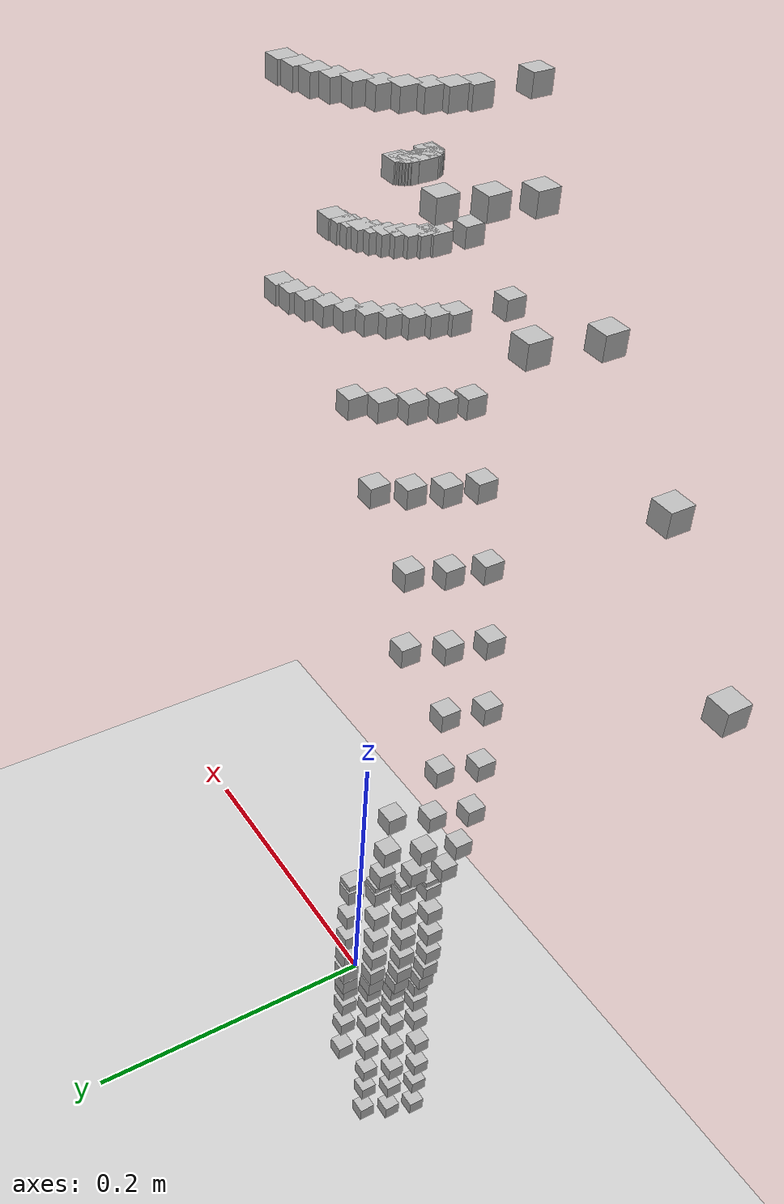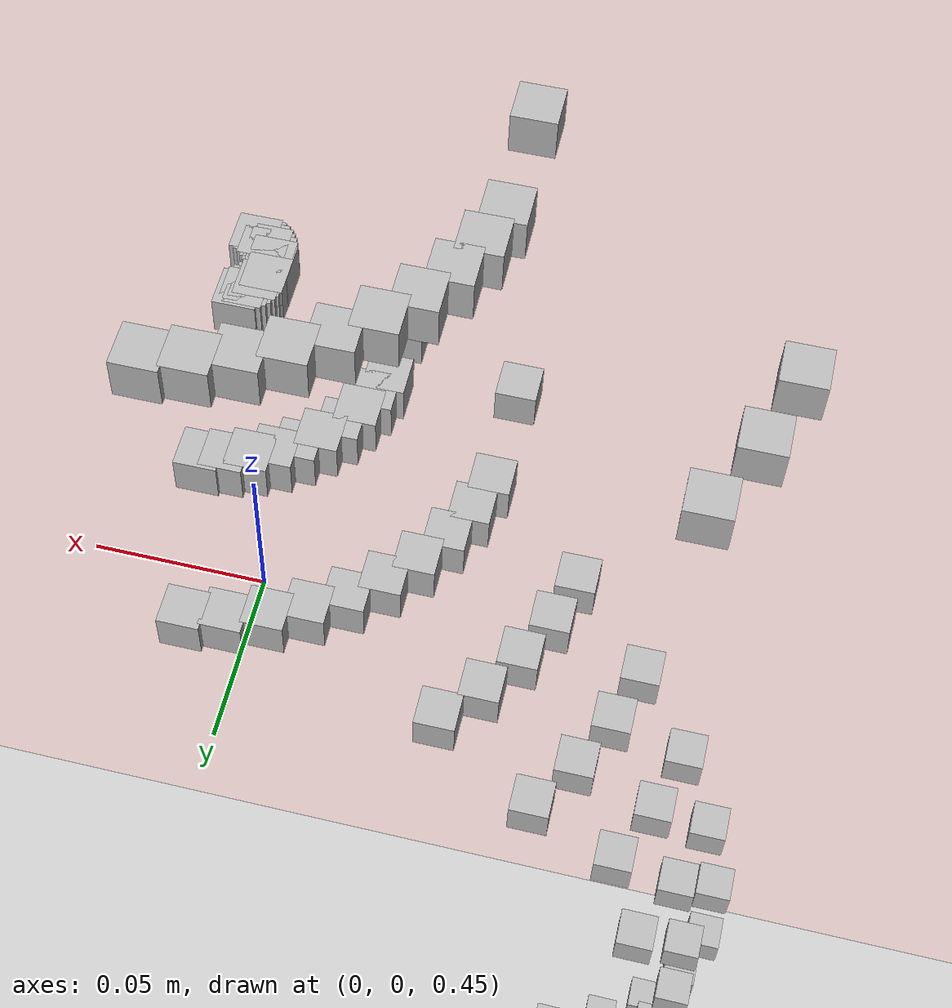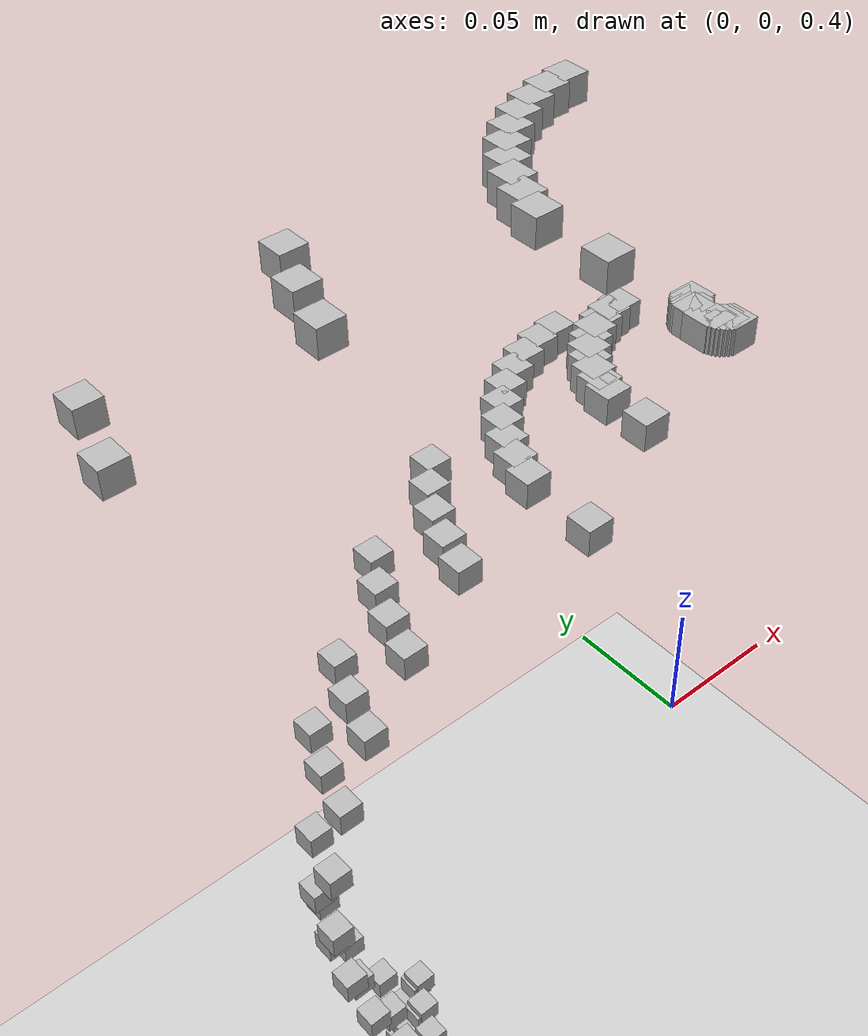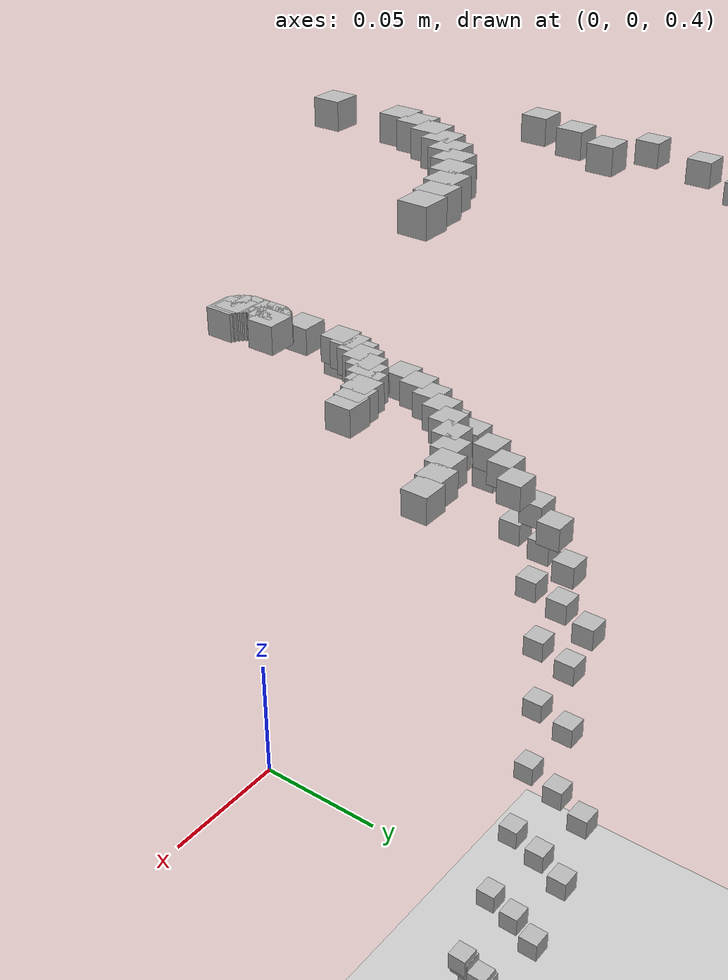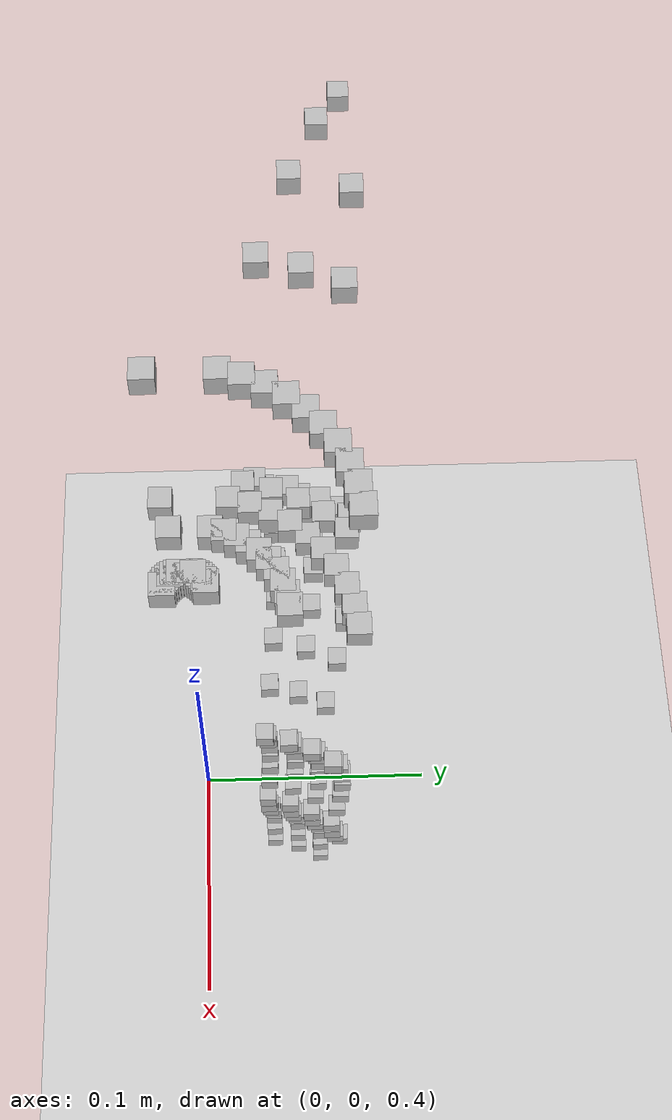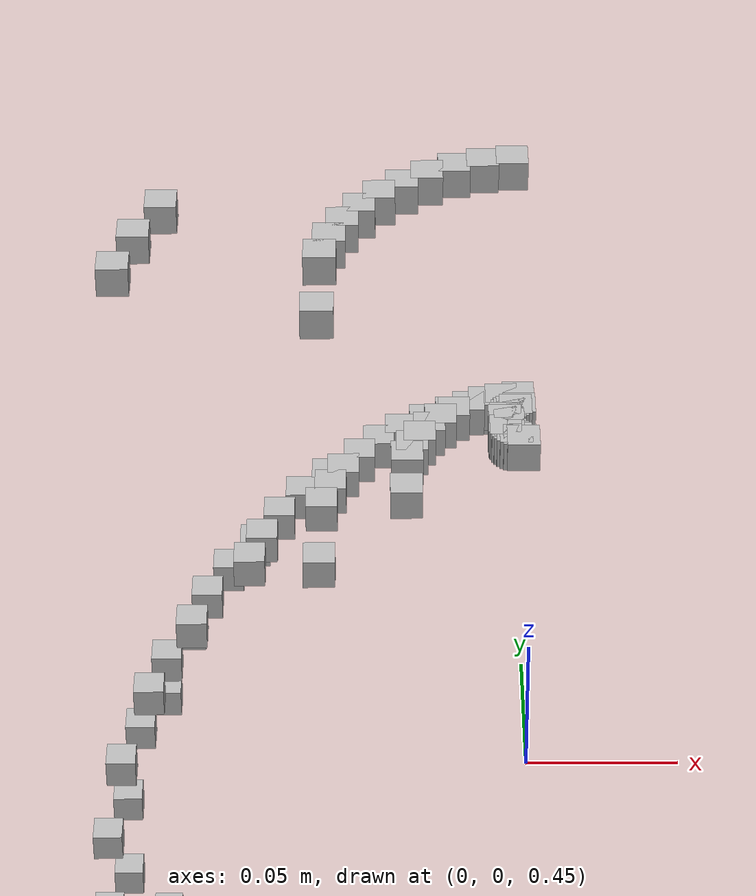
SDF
<sdf version="1.6">
 <world name="default">
  <model name="ground_plane">
   <static>1</static>
   <link name="link">
    <collision name="collision">
     <geometry><plane><normal>0 0 1</normal><size>100 100</size></plane></geometry>
     <surface>
      <contact><collide_bitmask>65535</collide_bitmask></contact>
      <friction><ode><mu>100</mu><mu2>50</mu2></ode></friction>
     </surface>
    </collision>
    <visual name="visual">
     <cast_shadows>0</cast_shadows>
     <geometry><plane><normal>0 0 1</normal><size>100 100</size></plane></geometry>
     <material>
      <script><uri>file://media/materials/scripts/gazebo.material</uri><name>Gazebo/Grey</name></script>
     </material>
    </visual>
   </link>
  </model>
  <model name="box_1685262135_6639128">
   <pose>-0.10334709397636789 0.05728622963244068 0.005648136022940203 0.0 0.0 0.0</pose>
   <static>1</static>
   <link name="box_1685262135_6639128_link">
    <visual name="visual"><geometry><box><size>0.01 0.01 0.01</size></box></geometry></visual>
   </link>
  </model>
  <model name="box_1685262135_6639287">
   <pose>-0.11031402938228857 0.0423455884397007 0.005648136022940203 0.0 0.0 0.0</pose>
   <static>1</static>
   <link name="box_1685262135_6639287_link">
    <visual name="visual"><geometry><box><size>0.01 0.01 0.01</size></box></geometry></visual>
   </link>
  </model>
  <model name="box_1685262135_663945">
   <pose>-0.11513382768663159 0.026580738535374886 0.005648136022940203 0.0 0.0 0.0</pose>
   <static>1</static>
   <link name="box_1685262135_663945_link">
    <visual name="visual"><geometry><box><size>0.01 0.01 0.01</size></box></geometry></visual>
   </link>
  </model>
  <model name="box_1685262135_665383">
   <pose>-0.102818924416911 0.056993460464931894 0.02920890265866033 0.0 0.0 0.0</pose>
   <static>1</static>
   <link name="box_1685262135_665383_link">
    <visual name="visual"><geometry><box><size>0.01 0.01 0.01</size></box></geometry></visual>
   </link>
  </model>
  <model name="box_1685262135_6653996">
   <pose>-0.10975025433976941 0.042129175477027034 0.02920890265866033 0.0 0.0 0.0</pose>
   <static>1</static>
   <link name="box_1685262135_6653996_link">
    <visual name="visual"><geometry><box><size>0.01 0.01 0.01</size></box></geometry></visual>
   </link>
  </model>
  <model name="box_1685262135_6654158">
   <pose>-0.1145454204009682 0.026444894009688677 0.02920890265866033 0.0 0.0 0.0</pose>
   <static>1</static>
   <link name="box_1685262135_6654158_link">
    <visual name="visual"><geometry><box><size>0.01 0.01 0.01</size></box></geometry></visual>
   </link>
  </model>
  <model name="box_1685262135_6668599">
   <pose>-0.10305663561211614 0.05712522593206576 0.05028140928145608 0.0 0.0 0.0</pose>
   <static>1</static>
   <link name="box_1685262135_6668599_link">
    <visual name="visual"><geometry><box><size>0.01 0.01 0.01</size></box></geometry></visual>
   </link>
  </model>
  <model name="box_1685262135_6668782">
   <pose>-0.11000399035462392 0.042226575607522895 0.05028140928145608 0.0 0.0 0.0</pose>
   <static>1</static>
   <link name="box_1685262135_6668782_link">
    <visual name="visual"><geometry><box><size>0.01 0.01 0.01</size></box></geometry></visual>
   </link>
  </model>
  <model name="box_1685262135_6668947">
   <pose>-0.11481024255256339 0.02650603302079744 0.05028140928145608 0.0 0.0 0.0</pose>
   <static>1</static>
   <link name="box_1685262135_6668947_link">
    <visual name="visual"><geometry><box><size>0.01 0.01 0.01</size></box></geometry></visual>
   </link>
  </model>
  <model name="box_1685262135_6676207">
   <pose>-0.3000103244935548 0.06926284093482016 0.5316791207351375 0.0 0.0 0.0</pose>
   <static>1</static>
   <link name="box_1685262135_6676207_link">
    <visual name="visual"><geometry><box><size>0.01 0.01 0.01</size></box></geometry></visual>
   </link>
  </model>
  <model name="box_1685262135_6682944">
   <pose>-0.0917620752987109 0.06914768348718114 0.06994559093984248 0.0 0.0 0.0</pose>
   <static>1</static>
   <link name="box_1685262135_6682944_link">
    <visual name="visual"><geometry><box><size>0.01 0.01 0.01</size></box></geometry></visual>
   </link>
  </model>
  <model name="box_1685262135_6683118">
   <pose>-0.1004925506248891 0.055703930414951655 0.06994559093984248 0.0 0.0 0.0</pose>
   <static>1</static>
   <link name="box_1685262135_6683118_link">
    <visual name="visual"><geometry><box><size>0.01 0.01 0.01</size></box></geometry></visual>
   </link>
  </model>
  <model name="box_1685262135_6683369">
   <pose>-0.10726705276173594 0.04117596369947679 0.06994559093984248 0.0 0.0 0.0</pose>
   <static>1</static>
   <link name="box_1685262135_6683369_link">
    <visual name="visual"><geometry><box><size>0.01 0.01 0.01</size></box></geometry></visual>
   </link>
  </model>
  <model name="box_1685262135_6683617">
   <pose>-0.11195372373103965 0.025846553687556128 0.06994559093984248 0.0 0.0 0.0</pose>
   <static>1</static>
   <link name="box_1685262135_6683617_link">
    <visual name="visual"><geometry><box><size>0.01 0.01 0.01</size></box></geometry></visual>
   </link>
  </model>
  <model name="box_1685262135_6691551">
   <pose>-0.24746845495353145 0.05713259455575965 0.5710245451470004 0.0 0.0 0.0</pose>
   <static>1</static>
   <link name="box_1685262135_6691551_link">
    <visual name="visual"><geometry><box><size>0.01 0.01 0.01</size></box></geometry></visual>
   </link>
  </model>
  <model name="box_1685262135_6700697">
   <pose>-0.08724861854500403 0.06574654987046152 0.08776207523471741 0.0 0.0 0.0</pose>
   <static>1</static>
   <link name="box_1685262135_6700697_link">
    <visual name="visual"><geometry><box><size>0.01 0.01 0.01</size></box></geometry></visual>
   </link>
  </model>
  <model name="box_1685262135_670093">
   <pose>-0.09554967220982881 0.052964048169253215 0.08776207523471741 0.0 0.0 0.0</pose>
   <static>1</static>
   <link name="box_1685262135_670093_link">
    <visual name="visual"><geometry><box><size>0.01 0.01 0.01</size></box></geometry></visual>
   </link>
  </model>
  <model name="box_1685262135_6701105">
   <pose>-0.10199096019123051 0.0391506615161422 0.08776207523471741 0.0 0.0 0.0</pose>
   <static>1</static>
   <link name="box_1685262135_6701105_link">
    <visual name="visual"><geometry><box><size>0.01 0.01 0.01</size></box></geometry></visual>
   </link>
  </model>
  <model name="box_1685262135_6701272">
   <pose>-0.10644711014550763 0.0245752517698369 0.08776207523471741 0.0 0.0 0.0</pose>
   <static>1</static>
   <link name="box_1685262135_6701272_link">
    <visual name="visual"><geometry><box><size>0.01 0.01 0.01</size></box></geometry></visual>
   </link>
  </model>
  <model name="box_1685262135_6708736">
   <pose>-0.1820327482213548 0.06987582524083515 0.6025204345093003 0.0 0.0 0.0</pose>
   <static>1</static>
   <link name="box_1685262135_6708736_link">
    <visual name="visual"><geometry><box><size>0.01 0.01 0.01</size></box></geometry></visual>
   </link>
  </model>
  <model name="box_1685262135_670901">
   <pose>-0.18998605330979215 0.043861736466716476 0.6025204345093003 0.0 0.0 0.0</pose>
   <static>1</static>
   <link name="box_1685262135_670901_link">
    <visual name="visual"><geometry><box><size>0.01 0.01 0.01</size></box></geometry></visual>
   </link>
  </model>
  <model name="box_1685262135_6716418">
   <pose>-0.08435087693095822 0.06356294494104589 0.10333120046485805 0.0 0.0 0.0</pose>
   <static>1</static>
   <link name="box_1685262135_6716418_link">
    <visual name="visual"><geometry><box><size>0.01 0.01 0.01</size></box></geometry></visual>
   </link>
  </model>
  <model name="box_1685262135_671658">
   <pose>-0.09237623214867711 0.05120498161911401 0.10333120046485805 0.0 0.0 0.0</pose>
   <static>1</static>
   <link name="box_1685262135_671658_link">
    <visual name="visual"><geometry><box><size>0.01 0.01 0.01</size></box></geometry></visual>
   </link>
  </model>
  <model name="box_1685262135_671676">
   <pose>-0.0986035890840287 0.03785037157476933 0.10333120046485805 0.0 0.0 0.0</pose>
   <static>1</static>
   <link name="box_1685262135_671676_link">
    <visual name="visual"><geometry><box><size>0.01 0.01 0.01</size></box></geometry></visual>
   </link>
  </model>
  <model name="box_1685262135_6716928">
   <pose>-0.10291173931777986 0.023759047101881304 0.10333120046485805 0.0 0.0 0.0</pose>
   <static>1</static>
   <link name="box_1685262135_6716928_link">
    <visual name="visual"><geometry><box><size>0.01 0.01 0.01</size></box></geometry></visual>
   </link>
  </model>
  <model name="box_1685262135_6724136">
   <pose>-0.11567034881498531 0.06411712133284544 0.6254485040649695 0.0 0.0 0.0</pose>
   <static>1</static>
   <link name="box_1685262135_6724136_link">
    <visual name="visual"><geometry><box><size>0.01 0.01 0.01</size></box></geometry></visual>
   </link>
  </model>
  <model name="box_1685262135_67243">
   <pose>-0.12346803153220416 0.047394936781831834 0.6254485040649695 0.0 0.0 0.0</pose>
   <static>1</static>
   <link name="box_1685262135_67243_link">
    <visual name="visual"><geometry><box><size>0.01 0.01 0.01</size></box></geometry></visual>
   </link>
  </model>
  <model name="box_1685262135_672449">
   <pose>-0.12886254945845294 0.02975026369730141 0.6254485040649695 0.0 0.0 0.0</pose>
   <static>1</static>
   <link name="box_1685262135_672449_link">
    <visual name="visual"><geometry><box><size>0.01 0.01 0.01</size></box></geometry></visual>
   </link>
  </model>
  <model name="box_1685262135_6731715">
   <pose>-0.08338877635484518 0.06283795015530969 0.1175214826546544 0.0 0.0 0.0</pose>
   <static>1</static>
   <link name="box_1685262135_6731715_link">
    <visual name="visual"><geometry><box><size>0.01 0.01 0.01</size></box></geometry></visual>
   </link>
  </model>
  <model name="box_1685262135_6731882">
   <pose>-0.09132259489672373 0.050620940953408425 0.1175214826546544 0.0 0.0 0.0</pose>
   <static>1</static>
   <link name="box_1685262135_6731882_link">
    <visual name="visual"><geometry><box><size>0.01 0.01 0.01</size></box></geometry></visual>
   </link>
  </model>
  <model name="box_1685262135_6732044">
   <pose>-0.09747892300684961 0.03741865271631591 0.1175214826546544 0.0 0.0 0.0</pose>
   <static>1</static>
   <link name="box_1685262135_6732044_link">
    <visual name="visual"><geometry><box><size>0.01 0.01 0.01</size></box></geometry></visual>
   </link>
  </model>
  <model name="box_1685262135_6732235">
   <pose>-0.10173793476127865 0.02348805296718693 0.1175214826546544 0.0 0.0 0.0</pose>
   <static>1</static>
   <link name="box_1685262135_6732235_link">
    <visual name="visual"><geometry><box><size>0.01 0.01 0.01</size></box></geometry></visual>
   </link>
  </model>
  <model name="box_1685262135_673241">
   <pose>-0.0656973682738992 -0.012770274754615075 0.6394057500981778 0.0 0.0 0.0</pose>
   <static>1</static>
   <link name="box_1685262135_673241_link">
    <visual name="visual"><geometry><box><size>0.01 0.01 0.01</size></box></geometry></visual>
   </link>
  </model>
  <model name="box_1685262135_6738503">
   <pose>-0.005833072906933615 0.06667232841207132 0.6394057500981778 0.0 0.0 0.0</pose>
   <static>1</static>
   <link name="box_1685262135_6738503_link">
    <visual name="visual"><geometry><box><size>0.01 0.01 0.01</size></box></geometry></visual>
   </link>
  </model>
  <model name="box_1685262135_6738744">
   <pose>-0.015055300535713753 0.0652116710505415 0.6394057500981778 0.0 0.0 0.0</pose>
   <static>1</static>
   <link name="box_1685262135_6738744_link">
    <visual name="visual"><geometry><box><size>0.01 0.01 0.01</size></box></geometry></visual>
   </link>
  </model>
  <model name="box_1685262135_673892">
   <pose>-0.02398449386471679 0.06248174268918928 0.6394057500981778 0.0 0.0 0.0</pose>
   <static>1</static>
   <link name="box_1685262135_673892_link">
    <visual name="visual"><geometry><box><size>0.01 0.01 0.01</size></box></geometry></visual>
   </link>
  </model>
  <model name="box_1685262135_6739082">
   <pose>-0.03244685630260051 0.05853567827832091 0.6394057500981778 0.0 0.0 0.0</pose>
   <static>1</static>
   <link name="box_1685262135_6739082_link">
    <visual name="visual"><geometry><box><size>0.01 0.01 0.01</size></box></geometry></visual>
   </link>
  </model>
  <model name="box_1685262135_673925">
   <pose>-0.04027767759030613 0.05345028347311216 0.6394057500981778 0.0 0.0 0.0</pose>
   <static>1</static>
   <link name="box_1685262135_673925_link">
    <visual name="visual"><geometry><box><size>0.01 0.01 0.01</size></box></geometry></visual>
   </link>
  </model>
  <model name="box_1685262135_6739411">
   <pose>-0.04732453969889562 0.04732453969889563 0.6394057500981778 0.0 0.0 0.0</pose>
   <static>1</static>
   <link name="box_1685262135_6739411_link">
    <visual name="visual"><geometry><box><size>0.01 0.01 0.01</size></box></geometry></visual>
   </link>
  </model>
  <model name="box_1685262135_6739576">
   <pose>-0.053450283473112176 0.040277677590306114 0.6394057500981778 0.0 0.0 0.0</pose>
   <static>1</static>
   <link name="box_1685262135_6739576_link">
    <visual name="visual"><geometry><box><size>0.01 0.01 0.01</size></box></geometry></visual>
   </link>
  </model>
  <model name="box_1685262135_673979">
   <pose>-0.0585356782783209 0.03244685630260052 0.6394057500981778 0.0 0.0 0.0</pose>
   <static>1</static>
   <link name="box_1685262135_673979_link">
    <visual name="visual"><geometry><box><size>0.01 0.01 0.01</size></box></geometry></visual>
   </link>
  </model>
  <model name="box_1685262135_6739974">
   <pose>-0.06248174268918928 0.023984493864716787 0.6394057500981778 0.0 0.0 0.0</pose>
   <static>1</static>
   <link name="box_1685262135_6739974_link">
    <visual name="visual"><geometry><box><size>0.01 0.01 0.01</size></box></geometry></visual>
   </link>
  </model>
  <model name="box_1685262135_6740139">
   <pose>-0.0652116710505415 0.015055300535713752 0.6394057500981778 0.0 0.0 0.0</pose>
   <static>1</static>
   <link name="box_1685262135_6740139_link">
    <visual name="visual"><geometry><box><size>0.01 0.01 0.01</size></box></geometry></visual>
   </link>
  </model>
  <model name="box_1685262135_674706">
   <pose>-0.08802804232605324 0.06633388781741759 0.13255102465284446 0.0 0.0 0.0</pose>
   <static>1</static>
   <link name="box_1685262135_674706_link">
    <visual name="visual"><geometry><box><size>0.01 0.01 0.01</size></box></geometry></visual>
   </link>
  </model>
  <model name="box_1685262135_674722">
   <pose>-0.09640325233560905 0.0534371953591134 0.13255102465284446 0.0 0.0 0.0</pose>
   <static>1</static>
   <link name="box_1685262135_674722_link">
    <visual name="visual"><geometry><box><size>0.01 0.01 0.01</size></box></geometry></visual>
   </link>
  </model>
  <model name="box_1685262135_674738">
   <pose>-0.10290208269552649 0.039500408677052824 0.13255102465284446 0.0 0.0 0.0</pose>
   <static>1</static>
   <link name="box_1685262135_674738_link">
    <visual name="visual"><geometry><box><size>0.01 0.01 0.01</size></box></geometry></visual>
   </link>
  </model>
  <model name="box_1685262135_6747544">
   <pose>-0.1073980410651597 0.02479479147114234 0.13255102465284446 0.0 0.0 0.0</pose>
   <static>1</static>
   <link name="box_1685262135_6747544_link">
    <visual name="visual"><geometry><box><size>0.01 0.01 0.01</size></box></geometry></visual>
   </link>
  </model>
  <model name="box_1685262135_6762633">
   <pose>-0.09093393041133167 0.0685236315532246 0.14825398363050718 0.0 0.0 0.0</pose>
   <static>1</static>
   <link name="box_1685262135_6762633_link">
    <visual name="visual"><geometry><box><size>0.01 0.01 0.01</size></box></geometry></visual>
   </link>
  </model>
  <model name="box_1685262135_6762795">
   <pose>-0.09958561394381701 0.05520120720353886 0.14825398363050718 0.0 0.0 0.0</pose>
   <static>1</static>
   <link name="box_1685262135_6762795_link">
    <visual name="visual"><geometry><box><size>0.01 0.01 0.01</size></box></geometry></visual>
   </link>
  </model>
  <model name="box_1685262135_6762958">
   <pose>-0.10629897677784288 0.04080435414607872 0.14825398363050718 0.0 0.0 0.0</pose>
   <static>1</static>
   <link name="box_1685262135_6762958_link">
    <visual name="visual"><geometry><box><size>0.01 0.01 0.01</size></box></geometry></visual>
   </link>
  </model>
  <model name="box_1685262135_6763132">
   <pose>-0.11094335094218198 0.025613290749430067 0.14825398363050718 0.0 0.0 0.0</pose>
   <static>1</static>
   <link name="box_1685262135_6763132_link">
    <visual name="visual"><geometry><box><size>0.01 0.01 0.01</size></box></geometry></visual>
   </link>
  </model>
  <model name="box_1685262135_6771228">
   <pose>-0.09204802756754422 0.06936316397749658 0.16428489958480497 0.0 0.0 0.0</pose>
   <static>1</static>
   <link name="box_1685262135_6771228_link">
    <visual name="visual"><geometry><box><size>0.01 0.01 0.01</size></box></geometry></visual>
   </link>
  </model>
  <model name="box_1685262135_677139">
   <pose>-0.10080570911393254 0.05587751699996771 0.16428489958480497 0.0 0.0 0.0</pose>
   <static>1</static>
   <link name="box_1685262135_677139_link">
    <visual name="visual"><geometry><box><size>0.01 0.01 0.01</size></box></geometry></visual>
   </link>
  </model>
  <model name="box_1685262135_6771553">
   <pose>-0.10760132219721277 0.04130427771376794 0.16428489958480497 0.0 0.0 0.0</pose>
   <static>1</static>
   <link name="box_1685262135_6771553_link">
    <visual name="visual"><geometry><box><size>0.01 0.01 0.01</size></box></geometry></visual>
   </link>
  </model>
  <model name="box_1685262135_6771717">
   <pose>-0.11230259793861416 0.025927097644789218 0.16428489958480497 0.0 0.0 0.0</pose>
   <static>1</static>
   <link name="box_1685262135_6771717_link">
    <visual name="visual"><geometry><box><size>0.01 0.01 0.01</size></box></geometry></visual>
   </link>
  </model>
  <model name="box_1685262135_6778748">
   <pose>-0.09137855275369092 0.0688586785200756 0.18035913689155542 0.0 0.0 0.0</pose>
   <static>1</static>
   <link name="box_1685262135_6778748_link">
    <visual name="visual"><geometry><box><size>0.01 0.01 0.01</size></box></geometry></visual>
   </link>
  </model>
  <model name="box_1685262135_6778927">
   <pose>-0.10007253877744836 0.05547111404619785 0.18035913689155542 0.0 0.0 0.0</pose>
   <static>1</static>
   <link name="box_1685262135_6778927_link">
    <visual name="visual"><geometry><box><size>0.01 0.01 0.01</size></box></geometry></visual>
   </link>
  </model>
  <model name="box_1685262135_677909">
   <pose>-0.1068187266647285 0.041003867434867836 0.18035913689155542 0.0 0.0 0.0</pose>
   <static>1</static>
   <link name="box_1685262135_677909_link">
    <visual name="visual"><geometry><box><size>0.01 0.01 0.01</size></box></geometry></visual>
   </link>
  </model>
  <model name="box_1685262135_677925">
   <pose>-0.11148580954198037 0.025738527185126026 0.18035913689155542 0.0 0.0 0.0</pose>
   <static>1</static>
   <link name="box_1685262135_677925_link">
    <visual name="visual"><geometry><box><size>0.01 0.01 0.01</size></box></geometry></visual>
   </link>
  </model>
  <model name="box_1685262135_6786144">
   <pose>-0.0889268396138326 0.06701118015384513 0.19617448160834577 0.0 0.0 0.0</pose>
   <static>1</static>
   <link name="box_1685262135_6786144_link">
    <visual name="visual"><geometry><box><size>0.01 0.01 0.01</size></box></geometry></visual>
   </link>
  </model>
  <model name="box_1685262135_6786304">
   <pose>-0.09738756346468559 0.05398280792740622 0.19617448160834577 0.0 0.0 0.0</pose>
   <static>1</static>
   <link name="box_1685262135_6786304_link">
    <visual name="visual"><geometry><box><size>0.01 0.01 0.01</size></box></geometry></visual>
   </link>
  </model>
  <model name="box_1685262135_6786463">
   <pose>-0.10395274916941005 0.0399037217491942 0.19617448160834577 0.0 0.0 0.0</pose>
   <static>1</static>
   <link name="box_1685262135_6786463_link">
    <visual name="visual"><geometry><box><size>0.01 0.01 0.01</size></box></geometry></visual>
   </link>
  </model>
  <model name="box_1685262135_6786623">
   <pose>-0.10849461285605153 0.02504795501694486 0.19617448160834577 0.0 0.0 0.0</pose>
   <static>1</static>
   <link name="box_1685262135_6786623_link">
    <visual name="visual"><geometry><box><size>0.01 0.01 0.01</size></box></geometry></visual>
   </link>
  </model>
  <model name="box_1685262135_6793587">
   <pose>-0.08472961193160576 0.06384834223469953 0.2113835132273968 0.0 0.0 0.0</pose>
   <static>1</static>
   <link name="box_1685262135_6793587_link">
    <visual name="visual"><geometry><box><size>0.01 0.01 0.01</size></box></geometry></visual>
   </link>
  </model>
  <model name="box_1685262135_6793752">
   <pose>-0.09279100095269657 0.051434891721442236 0.2113835132273968 0.0 0.0 0.0</pose>
   <static>1</static>
   <link name="box_1685262135_6793752_link">
    <visual name="visual"><geometry><box><size>0.01 0.01 0.01</size></box></geometry></visual>
   </link>
  </model>
  <model name="box_1685262135_6793914">
   <pose>-0.09904631868844237 0.03802031954714919 0.2113835132273968 0.0 0.0 0.0</pose>
   <static>1</static>
   <link name="box_1685262135_6793914_link">
    <visual name="visual"><geometry><box><size>0.01 0.01 0.01</size></box></geometry></visual>
   </link>
  </model>
  <model name="box_1685262135_6794076">
   <pose>-0.10337381249443528 0.023865725100343384 0.2113835132273968 0.0 0.0 0.0</pose>
   <static>1</static>
   <link name="box_1685262135_6794076_link">
    <visual name="visual"><geometry><box><size>0.01 0.01 0.01</size></box></geometry></visual>
   </link>
  </model>
  <model name="box_1685262135_6800988">
   <pose>-0.08342168139579186 0.06286274588218385 0.21508165296930842 0.0 0.0 0.0</pose>
   <static>1</static>
   <link name="box_1685262135_6800988_link">
    <visual name="visual"><geometry><box><size>0.01 0.01 0.01</size></box></geometry></visual>
   </link>
  </model>
  <model name="box_1685262135_680116">
   <pose>-0.09135863060627349 0.05064091587338738 0.21508165296930842 0.0 0.0 0.0</pose>
   <static>1</static>
   <link name="box_1685262135_680116_link">
    <visual name="visual"><geometry><box><size>0.01 0.01 0.01</size></box></geometry></visual>
   </link>
  </model>
  <model name="box_1685262135_6801322">
   <pose>-0.09751738799090609 0.0374334180403034 0.21508165296930842 0.0 0.0 0.0</pose>
   <static>1</static>
   <link name="box_1685262135_6801322_link">
    <visual name="visual"><geometry><box><size>0.01 0.01 0.01</size></box></geometry></visual>
   </link>
  </model>
  <model name="box_1685262135_6801484">
   <pose>-0.10177808034268045 0.023497321304946847 0.21508165296930842 0.0 0.0 0.0</pose>
   <static>1</static>
   <link name="box_1685262135_6801484_link">
    <visual name="visual"><geometry><box><size>0.01 0.01 0.01</size></box></geometry></visual>
   </link>
  </model>
  <model name="box_1685262135_6808496">
   <pose>-0.10693247591762375 0.0592736392953941 0.24636117300793503 0.0 0.0 0.0</pose>
   <static>1</static>
   <link name="box_1685262135_6808496_link">
    <visual name="visual"><geometry><box><size>0.01 0.01 0.01</size></box></geometry></visual>
   </link>
  </model>
  <model name="box_1685262135_6808658">
   <pose>-0.11414111259862814 0.04381466804554113 0.24636117300793503 0.0 0.0 0.0</pose>
   <static>1</static>
   <link name="box_1685262135_6808658_link">
    <visual name="visual"><geometry><box><size>0.01 0.01 0.01</size></box></geometry></visual>
   </link>
  </model>
  <model name="box_1685262135_680882">
   <pose>-0.11912812235649146 0.02750289412062791 0.24636117300793503 0.0 0.0 0.0</pose>
   <static>1</static>
   <link name="box_1685262135_680882_link">
    <visual name="visual"><geometry><box><size>0.01 0.01 0.01</size></box></geometry></visual>
   </link>
  </model>
  <model name="box_1685262135_6815948">
   <pose>-0.11858062357628997 0.06573031297525117 0.2798396861917631 0.0 0.0 0.0</pose>
   <static>1</static>
   <link name="box_1685262135_6815948_link">
    <visual name="visual"><geometry><box><size>0.01 0.01 0.01</size></box></geometry></visual>
   </link>
  </model>
  <model name="box_1685262135_6816113">
   <pose>-0.12657449658290512 0.0485873969908904 0.2798396861917631 0.0 0.0 0.0</pose>
   <static>1</static>
   <link name="box_1685262135_6816113_link">
    <visual name="visual"><geometry><box><size>0.01 0.01 0.01</size></box></geometry></visual>
   </link>
  </model>
  <model name="box_1685262135_681628">
   <pose>-0.13210474098988992 0.030498782591446887 0.2798396861917631 0.0 0.0 0.0</pose>
   <static>1</static>
   <link name="box_1685262135_681628_link">
    <visual name="visual"><geometry><box><size>0.01 0.01 0.01</size></box></geometry></visual>
   </link>
  </model>
  <model name="box_1685262135_6823382">
   <pose>-0.126019757579352 0.06985389228811852 0.314821790288947 0.0 0.0 0.0</pose>
   <static>1</static>
   <link name="box_1685262135_6823382_link">
    <visual name="visual"><geometry><box><size>0.01 0.01 0.01</size></box></geometry></visual>
   </link>
  </model>
  <model name="box_1685262135_6823547">
   <pose>-0.13451512476525362 0.05163551856568264 0.314821790288947 0.0 0.0 0.0</pose>
   <static>1</static>
   <link name="box_1685262135_6823547_link">
    <visual name="visual"><geometry><box><size>0.01 0.01 0.01</size></box></geometry></visual>
   </link>
  </model>
  <model name="box_1685262135_682371">
   <pose>-0.14039230805628616 0.032412118208897576 0.314821790288947 0.0 0.0 0.0</pose>
   <static>1</static>
   <link name="box_1685262135_682371_link">
    <visual name="visual"><geometry><box><size>0.01 0.01 0.01</size></box></geometry></visual>
   </link>
  </model>
  <model name="box_1685262135_6830783">
   <pose>-0.1378361966282957 0.05291035861167255 0.3506667056619606 0.0 0.0 0.0</pose>
   <static>1</static>
   <link name="box_1685262135_6830783_link">
    <visual name="visual"><geometry><box><size>0.01 0.01 0.01</size></box></geometry></visual>
   </link>
  </model>
  <model name="box_1685262135_6830945">
   <pose>-0.1438584829186813 0.03321234772950364 0.3506667056619606 0.0 0.0 0.0</pose>
   <static>1</static>
   <link name="box_1685262135_6830945_link">
    <visual name="visual"><geometry><box><size>0.01 0.01 0.01</size></box></geometry></visual>
   </link>
  </model>
  <model name="box_1685262135_6838026">
   <pose>-0.13646070393825518 0.052382356437511886 0.38661397693110494 0.0 0.0 0.0</pose>
   <static>1</static>
   <link name="box_1685262135_6838026_link">
    <visual name="visual"><geometry><box><size>0.01 0.01 0.01</size></box></geometry></visual>
   </link>
  </model>
  <model name="box_1685262135_6838224">
   <pose>-0.14242289272905514 0.03288091561922705 0.38661397693110494 0.0 0.0 0.0</pose>
   <static>1</static>
   <link name="box_1685262135_6838224_link">
    <visual name="visual"><geometry><box><size>0.01 0.01 0.01</size></box></geometry></visual>
   </link>
  </model>
  <model name="box_1685262135_6846297">
   <pose>-0.12217421485605737 0.06772227314884798 0.42204584917069304 0.0 0.0 0.0</pose>
   <static>1</static>
   <link name="box_1685262135_6846297_link">
    <visual name="visual"><geometry><box><size>0.01 0.01 0.01</size></box></geometry></visual>
   </link>
  </model>
  <model name="box_1685262135_684654">
   <pose>-0.13041034255371536 0.05005984030301996 0.42204584917069304 0.0 0.0 0.0</pose>
   <static>1</static>
   <link name="box_1685262135_684654_link">
    <visual name="visual"><geometry><box><size>0.01 0.01 0.01</size></box></geometry></visual>
   </link>
  </model>
  <model name="box_1685262135_684681">
   <pose>-0.1361081812731313 0.03142304960791803 0.42204584917069304 0.0 0.0 0.0</pose>
   <static>1</static>
   <link name="box_1685262135_684681_link">
    <visual name="visual"><geometry><box><size>0.01 0.01 0.01</size></box></geometry></visual>
   </link>
  </model>
  <model name="box_1685262135_6853821">
   <pose>-0.11224229476235746 0.06221691994260448 0.45627229759588134 0.0 0.0 0.0</pose>
   <static>1</static>
   <link name="box_1685262135_6853821_link">
    <visual name="visual"><geometry><box><size>0.01 0.01 0.01</size></box></geometry></visual>
   </link>
  </model>
  <model name="box_1685262135_6854012">
   <pose>-0.1198088821460382 0.0459903209336608 0.45627229759588134 0.0 0.0 0.0</pose>
   <static>1</static>
   <link name="box_1685262135_6854012_link">
    <visual name="visual"><geometry><box><size>0.01 0.01 0.01</size></box></geometry></visual>
   </link>
  </model>
  <model name="box_1685262135_685418">
   <pose>-0.12504352591932985 0.02886857264095812 0.45627229759588134 0.0 0.0 0.0</pose>
   <static>1</static>
   <link name="box_1685262135_685418_link">
    <visual name="visual"><geometry><box><size>0.01 0.01 0.01</size></box></geometry></visual>
   </link>
  </model>
  <model name="box_1685262135_6861384">
   <pose>-0.0896917648751154 0.06758759268251073 0.4885508417419748 0.0 0.0 0.0</pose>
   <static>1</static>
   <link name="box_1685262135_6861384_link">
    <visual name="visual"><geometry><box><size>0.01 0.01 0.01</size></box></geometry></visual>
   </link>
  </model>
  <model name="box_1685262135_6861546">
   <pose>-0.09822526564495437 0.05444715382835093 0.4885508417419748 0.0 0.0 0.0</pose>
   <static>1</static>
   <link name="box_1685262135_6861546_link">
    <visual name="visual"><geometry><box><size>0.01 0.01 0.01</size></box></geometry></visual>
   </link>
  </model>
  <model name="box_1685262135_686179">
   <pose>-0.10484692334859799 0.04024696305764176 0.4885508417419748 0.0 0.0 0.0</pose>
   <static>1</static>
   <link name="box_1685262135_686179_link">
    <visual name="visual"><geometry><box><size>0.01 0.01 0.01</size></box></geometry></visual>
   </link>
  </model>
  <model name="box_1685262135_6861978">
   <pose>-0.10942785495086879 0.02526341093125755 0.4885508417419748 0.0 0.0 0.0</pose>
   <static>1</static>
   <link name="box_1685262135_6861978_link">
    <visual name="visual"><geometry><box><size>0.01 0.01 0.01</size></box></geometry></visual>
   </link>
  </model>
  <model name="box_1685262135_6869464">
   <pose>-0.06504480197622042 0.06504480197622042 0.5182674726656538 0.0 0.0 0.0</pose>
   <static>1</static>
   <link name="box_1685262135_6869464_link">
    <visual name="visual"><geometry><box><size>0.01 0.01 0.01</size></box></geometry></visual>
   </link>
  </model>
  <model name="box_1685262135_6869628">
   <pose>-0.07346427722703368 0.05535930364230567 0.5182674726656538 0.0 0.0 0.0</pose>
   <static>1</static>
   <link name="box_1685262135_6869628_link">
    <visual name="visual"><geometry><box><size>0.01 0.01 0.01</size></box></geometry></visual>
   </link>
  </model>
  <model name="box_1685262135_6869793">
   <pose>-0.08045385388599947 0.04459629943326805 0.5182674726656538 0.0 0.0 0.0</pose>
   <static>1</static>
   <link name="box_1685262135_6869793_link">
    <visual name="visual"><geometry><box><size>0.01 0.01 0.01</size></box></geometry></visual>
   </link>
  </model>
  <model name="box_1685262135_6869957">
   <pose>-0.0858774877939767 0.03296527898330056 0.5182674726656538 0.0 0.0 0.0</pose>
   <static>1</static>
   <link name="box_1685262135_6869957_link">
    <visual name="visual"><geometry><box><size>0.01 0.01 0.01</size></box></geometry></visual>
   </link>
  </model>
  <model name="box_1685262135_6870146">
   <pose>-0.08962961408623871 0.0206926268753722 0.5182674726656538 0.0 0.0 0.0</pose>
   <static>1</static>
   <link name="box_1685262135_6870146_link">
    <visual name="visual"><geometry><box><size>0.01 0.01 0.01</size></box></geometry></visual>
   </link>
  </model>
  <model name="box_1685262135_6870317">
   <pose>-0.0664609638963458 -0.012918702707762455 0.5448600440676412 0.0 0.0 0.0</pose>
   <static>1</static>
   <link name="box_1685262135_6870317_link">
    <visual name="visual"><geometry><box><size>0.01 0.01 0.01</size></box></geometry></visual>
   </link>
  </model>
  <model name="box_1685262135_6875904">
   <pose>-0.005900870279251129 0.06744725592365029 0.5448600440676412 0.0 0.0 0.0</pose>
   <static>1</static>
   <link name="box_1685262135_6875904_link">
    <visual name="visual"><geometry><box><size>0.01 0.01 0.01</size></box></geometry></visual>
   </link>
  </model>
  <model name="box_1685262135_687607">
   <pose>-0.015230287173470084 0.06596962145030515 0.5448600440676412 0.0 0.0 0.0</pose>
   <static>1</static>
   <link name="box_1685262135_687607_link">
    <visual name="visual"><geometry><box><size>0.01 0.01 0.01</size></box></geometry></visual>
   </link>
  </model>
  <model name="box_1685262135_6876233">
   <pose>-0.02426326385205236 0.063207963334762 0.5448600440676412 0.0 0.0 0.0</pose>
   <static>1</static>
   <link name="box_1685262135_6876233_link">
    <visual name="visual"><geometry><box><size>0.01 0.01 0.01</size></box></geometry></visual>
   </link>
  </model>
  <model name="box_1685262135_6876392">
   <pose>-0.03282398369880799 0.05921603411090037 0.5448600440676412 0.0 0.0 0.0</pose>
   <static>1</static>
   <link name="box_1685262135_6876392_link">
    <visual name="visual"><geometry><box><size>0.01 0.01 0.01</size></box></geometry></visual>
   </link>
  </model>
  <model name="box_1685262135_6876554">
   <pose>-0.0407458220395944 0.054071532140310505 0.5448600440676412 0.0 0.0 0.0</pose>
   <static>1</static>
   <link name="box_1685262135_6876554_link">
    <visual name="visual"><geometry><box><size>0.01 0.01 0.01</size></box></geometry></visual>
   </link>
  </model>
  <model name="box_1685262135_6876717">
   <pose>-0.04787458930206571 0.047874589302065715 0.5448600440676412 0.0 0.0 0.0</pose>
   <static>1</static>
   <link name="box_1685262135_6876717_link">
    <visual name="visual"><geometry><box><size>0.01 0.01 0.01</size></box></geometry></visual>
   </link>
  </model>
  <model name="box_1685262135_6876874">
   <pose>-0.05407153214031052 0.040745822039594384 0.5448600440676412 0.0 0.0 0.0</pose>
   <static>1</static>
   <link name="box_1685262135_6876874_link">
    <visual name="visual"><geometry><box><size>0.01 0.01 0.01</size></box></geometry></visual>
   </link>
  </model>
  <model name="box_1685262135_6877038">
   <pose>-0.059216034110900366 0.032823983698808 0.5448600440676412 0.0 0.0 0.0</pose>
   <static>1</static>
   <link name="box_1685262135_6877038_link">
    <visual name="visual"><geometry><box><size>0.01 0.01 0.01</size></box></geometry></visual>
   </link>
  </model>
  <model name="box_1685262135_6877203">
   <pose>-0.063207963334762 0.024263263852052356 0.5448600440676412 0.0 0.0 0.0</pose>
   <static>1</static>
   <link name="box_1685262135_6877203_link">
    <visual name="visual"><geometry><box><size>0.01 0.01 0.01</size></box></geometry></visual>
   </link>
  </model>
  <model name="box_1685262135_6877384">
   <pose>-0.06596962145030515 0.015230287173470082 0.5448600440676412 0.0 0.0 0.0</pose>
   <static>1</static>
   <link name="box_1685262135_6877384_link">
    <visual name="visual"><geometry><box><size>0.01 0.01 0.01</size></box></geometry></visual>
   </link>
  </model>
  <model name="box_1685262135_6877553">
   <pose>-0.039247628362242604 -0.007628966133975011 0.5678387857354699 0.0 0.0 0.0</pose>
   <static>1</static>
   <link name="box_1685262135_6877553_link">
    <visual name="visual"><geometry><box><size>0.01 0.01 0.01</size></box></geometry></visual>
   </link>
  </model>
  <model name="box_1685262135_6883082">
   <pose>-0.0034846795796560025 0.039830069853832493 0.5678387857354699 0.0 0.0 0.0</pose>
   <static>1</static>
   <link name="box_1685262135_6883082_link">
    <visual name="visual"><geometry><box><size>0.01 0.01 0.01</size></box></geometry></visual>
   </link>
  </model>
  <model name="box_1685262135_6883266">
   <pose>-0.008994041250543015 0.0389574726890436 0.5678387857354699 0.0 0.0 0.0</pose>
   <static>1</static>
   <link name="box_1685262135_6883266_link">
    <visual name="visual"><geometry><box><size>0.01 0.01 0.01</size></box></geometry></visual>
   </link>
  </model>
  <model name="box_1685262135_6883435">
   <pose>-0.014328344139058513 0.037326612631830854 0.5678387857354699 0.0 0.0 0.0</pose>
   <static>1</static>
   <link name="box_1685262135_6883435_link">
    <visual name="visual"><geometry><box><size>0.01 0.01 0.01</size></box></geometry></visual>
   </link>
  </model>
  <model name="box_1685262135_6883597">
   <pose>-0.019383762107157122 0.034969232518132096 0.5678387857354699 0.0 0.0 0.0</pose>
   <static>1</static>
   <link name="box_1685262135_6883597_link">
    <visual name="visual"><geometry><box><size>0.01 0.01 0.01</size></box></geometry></visual>
   </link>
  </model>
  <model name="box_1685262135_6883757">
   <pose>-0.02406189719454252 0.03193121607038031 0.5678387857354699 0.0 0.0 0.0</pose>
   <static>1</static>
   <link name="box_1685262135_6883757_link">
    <visual name="visual"><geometry><box><size>0.01 0.01 0.01</size></box></geometry></visual>
   </link>
  </model>
  <model name="box_1685262135_688392">
   <pose>-0.02827169482303853 0.028271694823038533 0.5678387857354699 0.0 0.0 0.0</pose>
   <static>1</static>
   <link name="box_1685262135_688392_link">
    <visual name="visual"><geometry><box><size>0.01 0.01 0.01</size></box></geometry></visual>
   </link>
  </model>
  <model name="box_1685262135_6884115">
   <pose>-0.031931216070380325 0.024061897194542513 0.5678387857354699 0.0 0.0 0.0</pose>
   <static>1</static>
   <link name="box_1685262135_6884115_link">
    <visual name="visual"><geometry><box><size>0.01 0.01 0.01</size></box></geometry></visual>
   </link>
  </model>
  <model name="box_1685262135_6884284">
   <pose>-0.03496923251813209 0.01938376210715713 0.5678387857354699 0.0 0.0 0.0</pose>
   <static>1</static>
   <link name="box_1685262135_6884284_link">
    <visual name="visual"><geometry><box><size>0.01 0.01 0.01</size></box></geometry></visual>
   </link>
  </model>
  <model name="box_1685262135_6884444">
   <pose>-0.037326612631830854 0.014328344139058511 0.5678387857354699 0.0 0.0 0.0</pose>
   <static>1</static>
   <link name="box_1685262135_6884444_link">
    <visual name="visual"><geometry><box><size>0.01 0.01 0.01</size></box></geometry></visual>
   </link>
  </model>
  <model name="box_1685262135_6884606">
   <pose>-0.0389574726890436 0.008994041250543015 0.5678387857354699 0.0 0.0 0.0</pose>
   <static>1</static>
   <link name="box_1685262135_6884606_link">
    <visual name="visual"><geometry><box><size>0.01 0.01 0.01</size></box></geometry></visual>
   </link>
  </model>
  <model name="box_1685262135_6884806">
   <pose>-0.009132601327674211 -0.0017751978693048528 0.5867290727416858 0.0 0.0 0.0</pose>
   <static>1</static>
   <link name="box_1685262135_6884806_link">
    <visual name="visual"><geometry><box><size>0.01 0.01 0.01</size></box></geometry></visual>
   </link>
  </model>
  <model name="box_1685262135_6884978">
   <pose>-0.008796663687053783 -0.0030289342122750995 0.5867290727416858 0.0 0.0 0.0</pose>
   <static>1</static>
   <link name="box_1685262135_6884978_link">
    <visual name="visual"><geometry><box><size>0.01 0.01 0.01</size></box></geometry></visual>
   </link>
  </model>
  <model name="box_1685262135_688514">
   <pose>-0.008289508993821493 -0.0042237157961650075 0.5867290727416858 0.0 0.0 0.0</pose>
   <static>1</static>
   <link name="box_1685262135_688514_link">
    <visual name="visual"><geometry><box><size>0.01 0.01 0.01</size></box></geometry></visual>
   </link>
  </model>
  <model name="box_1685262135_6885302">
   <pose>-0.0076210084372011905 -0.005336287556488077 0.5867290727416858 0.0 0.0 0.0</pose>
   <static>1</static>
   <link name="box_1685262135_6885302_link">
    <visual name="visual"><geometry><box><size>0.01 0.01 0.01</size></box></geometry></visual>
   </link>
  </model>
  <model name="box_1685262135_6885467">
   <pose>-0.006804173620119382 -0.006344994549461232 0.5867290727416858 0.0 0.0 0.0</pose>
   <static>1</static>
   <link name="box_1685262135_6885467_link">
    <visual name="visual"><geometry><box><size>0.01 0.01 0.01</size></box></geometry></visual>
   </link>
  </model>
  <model name="box_1685262135_688563">
   <pose>-0.005854903303154725 -0.007230203440853454 0.5867290727416858 0.0 0.0 0.0</pose>
   <static>1</static>
   <link name="box_1685262135_688563_link">
    <visual name="visual"><geometry><box><size>0.01 0.01 0.01</size></box></geometry></visual>
   </link>
  </model>
  <model name="box_1685262135_6885793">
   <pose>-0.004791673953247963 -0.007974684646503978 0.5867290727416858 0.0 0.0 0.0</pose>
   <static>1</static>
   <link name="box_1685262135_6885793_link">
    <visual name="visual"><geometry><box><size>0.01 0.01 0.01</size></box></geometry></visual>
   </link>
  </model>
  <model name="box_1685262135_6885955">
   <pose>-0.0036351801202895617 -0.008563947686579641 0.5867290727416858 0.0 0.0 0.0</pose>
   <static>1</static>
   <link name="box_1685262135_6885955_link">
    <visual name="visual"><geometry><box><size>0.01 0.01 0.01</size></box></geometry></visual>
   </link>
  </model>
  <model name="box_1685262135_689089">
   <pose>-0.004510442514418189 0.008137053693416933 0.5867290727416858 0.0 0.0 0.0</pose>
   <static>1</static>
   <link name="box_1685262135_689089_link">
    <visual name="visual"><geometry><box><size>0.01 0.01 0.01</size></box></geometry></visual>
   </link>
  </model>
  <model name="box_1685262135_6891055">
   <pose>-0.005599006193114163 0.007430132174792752 0.5867290727416858 0.0 0.0 0.0</pose>
   <static>1</static>
   <link name="box_1685262135_6891055_link">
    <visual name="visual"><geometry><box><size>0.01 0.01 0.01</size></box></geometry></visual>
   </link>
  </model>
  <model name="box_1685262135_6891217">
   <pose>-0.0065785915850363145 0.006578591585036315 0.5867290727416858 0.0 0.0 0.0</pose>
   <static>1</static>
   <link name="box_1685262135_6891217_link">
    <visual name="visual"><geometry><box><size>0.01 0.01 0.01</size></box></geometry></visual>
   </link>
  </model>
  <model name="box_1685262135_6891382">
   <pose>-0.007430132174792755 0.00559900619311416 0.5867290727416858 0.0 0.0 0.0</pose>
   <static>1</static>
   <link name="box_1685262135_6891382_link">
    <visual name="visual"><geometry><box><size>0.01 0.01 0.01</size></box></geometry></visual>
   </link>
  </model>
  <model name="box_1685262135_6891544">
   <pose>-0.008137053693416932 0.004510442514418191 0.5867290727416858 0.0 0.0 0.0</pose>
   <static>1</static>
   <link name="box_1685262135_6891544_link">
    <visual name="visual"><geometry><box><size>0.01 0.01 0.01</size></box></geometry></visual>
   </link>
  </model>
  <model name="box_1685262135_6891708">
   <pose>-0.008685596717660142 0.0033340882027313844 0.5867290727416858 0.0 0.0 0.0</pose>
   <static>1</static>
   <link name="box_1685262135_6891708_link">
    <visual name="visual"><geometry><box><size>0.01 0.01 0.01</size></box></geometry></visual>
   </link>
  </model>
  <model name="box_1685262135_6891873">
   <pose>-0.009065084481513929 0.002092839656647532 0.5867290727416858 0.0 0.0 0.0</pose>
   <static>1</static>
   <link name="box_1685262135_6891873_link">
    <visual name="visual"><geometry><box><size>0.01 0.01 0.01</size></box></geometry></visual>
   </link>
  </model>
 </world>
</sdf>
